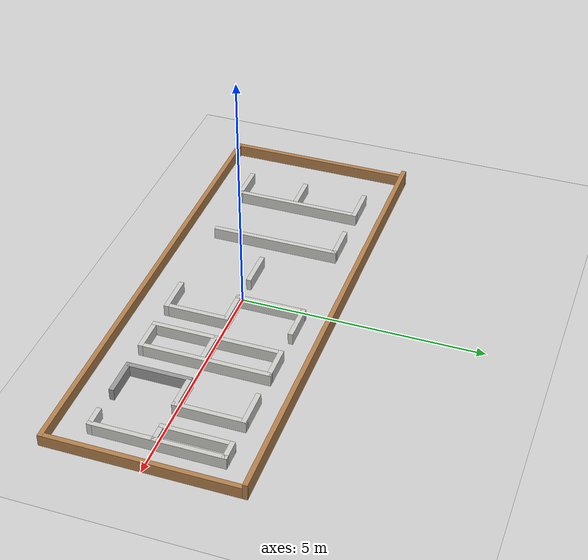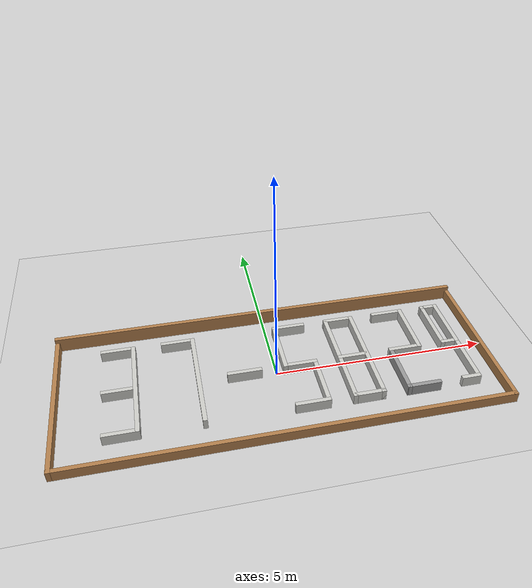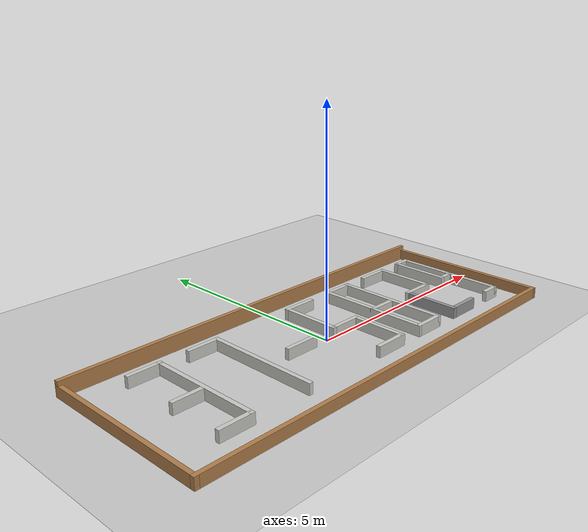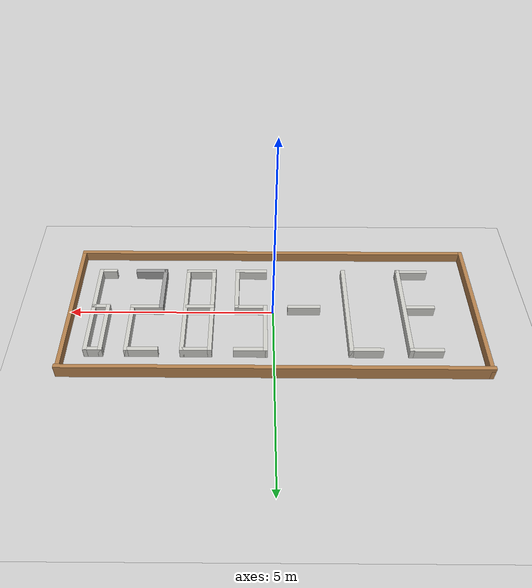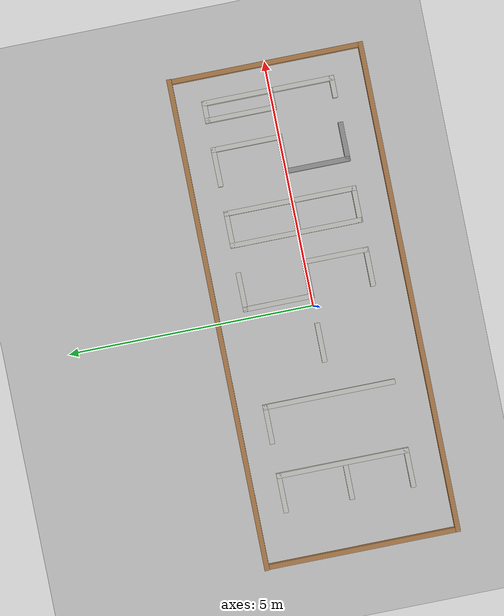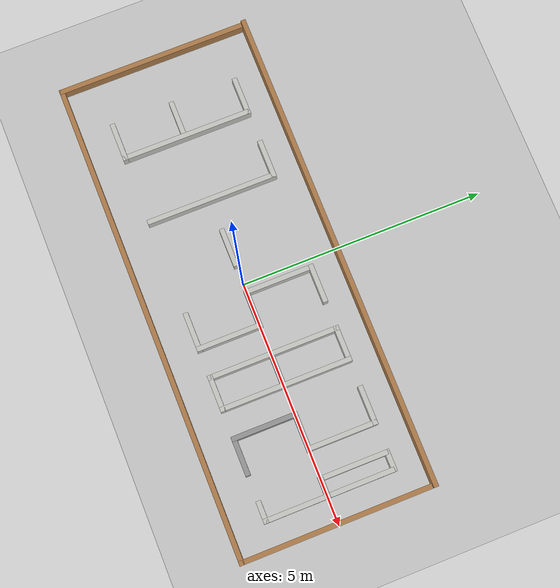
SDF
<sdf version="1.6">
 <world name="default">
  <light name="sun" type="directional">
   <pose>0 0 10 0 -0 0</pose>
   <diffuse>0.8 0.8 0.8 1</diffuse>
   <specular>0.1 0.1 0.1 1</specular>
   <attenuation>
    <range>1000</range>
    <constant>0.9</constant>
    <linear>0.01</linear>
    <quadratic>0.001</quadratic>
   </attenuation>
   <direction>-0.5 0.5 -1</direction>
  </light>
  <model name="ground_plane">
   <static>1</static>
   <link name="link">
    <collision name="collision">
     <geometry><plane><normal>0 0 1</normal><size>100 100</size></plane></geometry>
     <surface><friction><ode><mu>100</mu><mu2>50</mu2></ode></friction></surface>
    </collision>
    <visual name="visual">
     <cast_shadows>0</cast_shadows>
     <geometry><plane><normal>0 0 1</normal><size>100 100</size></plane></geometry>
     <material>
      <script><uri>file://media/materials/scripts/gazebo.material</uri><name>Gazebo/Grey</name></script>
     </material>
    </visual>
   </link>
  </model>
  <gravity>0 0 -9.8</gravity>
  <magnetic_field>6e-06 2.3e-05 -4.2e-05</magnetic_field>
  <atmosphere type="adiabatic"/>
  <physics name="default_physics" default="0" type="ode">
   <max_step_size>0.001</max_step_size>
   <real_time_factor>1</real_time_factor>
   <real_time_update_rate>1000</real_time_update_rate>
  </physics>
  <scene><ambient>0.4 0.4 0.4 1</ambient><background>0.7 0.7 0.7 1</background><shadows>1</shadows></scene>
  <spherical_coordinates>
   <surface_model>EARTH_WGS84</surface_model>
   <latitude_deg>0</latitude_deg>
   <longitude_deg>0</longitude_deg>
   <elevation>0</elevation>
   <heading_deg>0</heading_deg>
  </spherical_coordinates>
  <model name="ms4_map">
   <link name="Wall_0">
    <collision name="Wall_0_Collision">
     <geometry><box><size>10 0.1 0.25</size></box></geometry>
     <pose>0 0 0.125 0 -0 0</pose>
    </collision>
    <visual name="Wall_0_Visual">
     <pose>0 0 0.125 0 -0 0</pose>
     <geometry><box><size>10 0.1 0.25</size></box></geometry>
     <material>
      <script><uri>file://media/materials/scripts/gazebo.material</uri><name>Gazebo/Wood</name></script>
      <ambient>1 1 1 1</ambient>
     </material>
    </visual>
    <pose>0 -1.95 0 0 -0 0</pose>
   </link>
   <link name="Wall_11">
    <collision name="Wall_11_Collision">
     <geometry><box><size>4 0.1 0.25</size></box></geometry>
     <pose>0 0 0.125 0 -0 0</pose>
    </collision>
    <visual name="Wall_11_Visual">
     <pose>0 0 0.125 0 -0 0</pose>
     <geometry><box><size>4 0.1 0.25</size></box></geometry>
     <material>
      <script><uri>file://media/materials/scripts/gazebo.material</uri><name>Gazebo/Wood</name></script>
      <ambient>1 1 1 1</ambient>
     </material>
    </visual>
    <pose>4.95 0 0 0 -0 1.5708</pose>
   </link>
   <link name="Wall_17">
    <collision name="Wall_17_Collision">
     <geometry><box><size>0.8 0.1 0.25</size></box></geometry>
     <pose>0 0 0.125 0 -0 0</pose>
    </collision>
    <visual name="Wall_17_Visual">
     <pose>0 0 0.125 0 -0 0</pose>
     <geometry><box><size>0.8 0.1 0.25</size></box></geometry>
     <material>
      <script><uri>file://media/materials/scripts/gazebo.material</uri><name>Gazebo/CeilingTiled</name></script>
      <ambient>1 1 1 1</ambient>
     </material>
    </visual>
    <pose>-3.55 1.35 0 0 -0 0</pose>
   </link>
   <link name="Wall_21">
    <collision name="Wall_21_Collision">
     <geometry><box><size>2.7 0.1 0.25</size></box></geometry>
     <pose>0 0 0.125 0 -0 0</pose>
    </collision>
    <visual name="Wall_21_Visual">
     <pose>0 0 0.125 0 -0 0</pose>
     <geometry><box><size>2.7 0.1 0.25</size></box></geometry>
     <material>
      <script><uri>file://media/materials/scripts/gazebo.material</uri><name>Gazebo/CeilingTiled</name></script>
      <ambient>1 1 1 1</ambient>
     </material>
    </visual>
    <pose>-3.2 0.05 0 0 0 -1.5708</pose>
   </link>
   <link name="Wall_23">
    <collision name="Wall_23_Collision">
     <geometry><box><size>0.8 0.1 0.25</size></box></geometry>
     <pose>0 0 0.125 0 -0 0</pose>
    </collision>
    <visual name="Wall_23_Visual">
     <pose>0 0 0.125 0 -0 0</pose>
     <geometry><box><size>0.8 0.1 0.25</size></box></geometry>
     <material>
      <script><uri>file://media/materials/scripts/gazebo.material</uri><name>Gazebo/CeilingTiled</name></script>
      <ambient>1 1 1 1</ambient>
     </material>
    </visual>
    <pose>-3.55 -1.25 0 0 -0 3.14159</pose>
   </link>
   <link name="Wall_27">
    <collision name="Wall_27_Collision">
     <geometry><box><size>0.7 0.1 0.25</size></box></geometry>
     <pose>0 0 0.125 0 -0 0</pose>
    </collision>
    <visual name="Wall_27_Visual">
     <pose>0 0 0.125 0 -0 0</pose>
     <geometry><box><size>0.7 0.1 0.25</size></box></geometry>
     <material>
      <script><uri>file://media/materials/scripts/gazebo.material</uri><name>Gazebo/CeilingTiled</name></script>
      <ambient>1 1 1 1</ambient>
     </material>
    </visual>
    <pose>-3.599 0 0 0 -0 3.14159</pose>
   </link>
   <link name="Wall_29">
    <collision name="Wall_29_Collision">
     <geometry><box><size>0.8 0.1 0.25</size></box></geometry>
     <pose>0 0 0.125 0 -0 0</pose>
    </collision>
    <visual name="Wall_29_Visual">
     <pose>0 0 0.125 0 -0 0</pose>
     <geometry><box><size>0.8 0.1 0.25</size></box></geometry>
     <material>
      <script><uri>file://media/materials/scripts/gazebo.material</uri><name>Gazebo/CeilingTiled</name></script>
      <ambient>1 1 1 1</ambient>
     </material>
    </visual>
    <pose>-2.15 1.35 0 0 -0 0</pose>
   </link>
   <link name="Wall_31">
    <collision name="Wall_31_Collision">
     <geometry><box><size>2.7 0.1 0.25</size></box></geometry>
     <pose>0 0 0.125 0 -0 0</pose>
    </collision>
    <visual name="Wall_31_Visual">
     <pose>0 0 0.125 0 -0 0</pose>
     <geometry><box><size>2.7 0.1 0.25</size></box></geometry>
     <material>
      <script><uri>file://media/materials/scripts/gazebo.material</uri><name>Gazebo/CeilingTiled</name></script>
      <ambient>1 1 1 1</ambient>
     </material>
    </visual>
    <pose>-1.8 0.05 0 0 0 -1.5708</pose>
   </link>
   <link name="Wall_34">
    <collision name="Wall_34_Collision">
     <geometry><box><size>0.8 0.1 0.25</size></box></geometry>
     <pose>0 0 0.125 0 -0 0</pose>
    </collision>
    <visual name="Wall_34_Visual">
     <pose>0 0 0.125 0 -0 0</pose>
     <geometry><box><size>0.8 0.1 0.25</size></box></geometry>
     <material>
      <script><uri>file://media/materials/scripts/gazebo.material</uri><name>Gazebo/CeilingTiled</name></script>
      <ambient>1 1 1 1</ambient>
     </material>
    </visual>
    <pose>-0.75 0 0 0 -0 0</pose>
   </link>
   <link name="Wall_36">
    <collision name="Wall_36_Collision">
     <geometry><box><size>0.8 0.1 0.25</size></box></geometry>
     <pose>0 0 0.125 0 -0 0</pose>
    </collision>
    <visual name="Wall_36_Visual">
     <pose>0 0 0.125 0 -0 0</pose>
     <geometry><box><size>0.8 0.1 0.25</size></box></geometry>
     <material>
      <script><uri>file://media/materials/scripts/gazebo.material</uri><name>Gazebo/CeilingTiled</name></script>
      <ambient>1 1 1 1</ambient>
     </material>
    </visual>
    <pose>0.55 1.35 0 0 -0 0</pose>
   </link>
   <link name="Wall_4">
    <collision name="Wall_4_Collision">
     <geometry><box><size>4.00021 0.1 0.25</size></box></geometry>
     <pose>0 0 0.125 0 -0 0</pose>
    </collision>
    <visual name="Wall_4_Visual">
     <pose>0 0 0.125 0 -0 0</pose>
     <geometry><box><size>4.00021 0.1 0.25</size></box></geometry>
     <material>
      <script><uri>file://media/materials/scripts/gazebo.material</uri><name>Gazebo/Wood</name></script>
      <ambient>1 1 1 1</ambient>
     </material>
    </visual>
    <pose>-4.95 0 0 0 -0 1.5708</pose>
   </link>
   <link name="Wall_40">
    <collision name="Wall_40_Collision">
     <geometry><box><size>1.45 0.1 0.25</size></box></geometry>
     <pose>0 0 0.125 0 -0 0</pose>
    </collision>
    <visual name="Wall_40_Visual">
     <pose>0 0 0.125 0 -0 0</pose>
     <geometry><box><size>1.45 0.1 0.25</size></box></geometry>
     <material>
      <script><uri>file://media/materials/scripts/gazebo.material</uri><name>Gazebo/CeilingTiled</name></script>
      <ambient>1 1 1 1</ambient>
     </material>
    </visual>
    <pose>0.2 0.675 0 0 0 -1.5708</pose>
   </link>
   <link name="Wall_42">
    <collision name="Wall_42_Collision">
     <geometry><box><size>0.8 0.1 0.25</size></box></geometry>
     <pose>0 0 0.125 0 -0 0</pose>
    </collision>
    <visual name="Wall_42_Visual">
     <pose>0 0 0.125 0 -0 0</pose>
     <geometry><box><size>0.8 0.1 0.25</size></box></geometry>
     <material>
      <script><uri>file://media/materials/scripts/gazebo.material</uri><name>Gazebo/CeilingTiled</name></script>
      <ambient>1 1 1 1</ambient>
     </material>
    </visual>
    <pose>0.55 0 0 0 -0 0</pose>
   </link>
   <link name="Wall_44">
    <collision name="Wall_44_Collision">
     <geometry><box><size>1.35 0.1 0.25</size></box></geometry>
     <pose>0 0 0.125 0 -0 0</pose>
    </collision>
    <visual name="Wall_44_Visual">
     <pose>0 0 0.125 0 -0 0</pose>
     <geometry><box><size>1.35 0.1 0.25</size></box></geometry>
     <material>
      <script><uri>file://media/materials/scripts/gazebo.material</uri><name>Gazebo/CeilingTiled</name></script>
      <ambient>1 1 1 1</ambient>
     </material>
    </visual>
    <pose>0.9 -0.625 0 0 0 -1.5708</pose>
   </link>
   <link name="Wall_46">
    <collision name="Wall_46_Collision">
     <geometry><box><size>0.8 0.1 0.25</size></box></geometry>
     <pose>0 0 0.125 0 -0 0</pose>
    </collision>
    <visual name="Wall_46_Visual">
     <pose>0 0 0.125 0 -0 0</pose>
     <geometry><box><size>0.8 0.1 0.25</size></box></geometry>
     <material>
      <script><uri>file://media/materials/scripts/gazebo.material</uri><name>Gazebo/CeilingTiled</name></script>
      <ambient>1 1 1 1</ambient>
     </material>
    </visual>
    <pose>0.55 -1.25 0 0 -0 3.14159</pose>
   </link>
   <link name="Wall_48">
    <collision name="Wall_48_Collision">
     <geometry><box><size>0.75 0.1 0.25</size></box></geometry>
     <pose>0 0 0.125 0 -0 0</pose>
    </collision>
    <visual name="Wall_48_Visual">
     <pose>0 0 0.125 0 -0 0</pose>
     <geometry><box><size>0.75 0.1 0.25</size></box></geometry>
     <material>
      <script><uri>file://media/materials/scripts/gazebo.material</uri><name>Gazebo/CeilingTiled</name></script>
      <ambient>1 1 1 1</ambient>
     </material>
    </visual>
    <pose>1.825 1.35 0 0 -0 0</pose>
   </link>
   <link name="Wall_50">
    <collision name="Wall_50_Collision">
     <geometry><box><size>2.7 0.1 0.25</size></box></geometry>
     <pose>0 0 0.125 0 -0 0</pose>
    </collision>
    <visual name="Wall_50_Visual">
     <pose>0 0 0.125 0 -0 0</pose>
     <geometry><box><size>2.7 0.1 0.25</size></box></geometry>
     <material>
      <script><uri>file://media/materials/scripts/gazebo.material</uri><name>Gazebo/CeilingTiled</name></script>
      <ambient>1 1 1 1</ambient>
     </material>
    </visual>
    <pose>1.5 0.05 0 0 0 -1.5708</pose>
   </link>
   <link name="Wall_52">
    <collision name="Wall_52_Collision">
     <geometry><box><size>2.7 0.1 0.25</size></box></geometry>
     <pose>0 0 0.125 0 -0 0</pose>
    </collision>
    <visual name="Wall_52_Visual">
     <pose>0 0 0.125 0 -0 0</pose>
     <geometry><box><size>2.7 0.1 0.25</size></box></geometry>
     <material>
      <script><uri>file://media/materials/scripts/gazebo.material</uri><name>Gazebo/CeilingTiled</name></script>
      <ambient>1 1 1 1</ambient>
     </material>
    </visual>
    <pose>2.15 0.05 0 0 0 -1.5708</pose>
   </link>
   <link name="Wall_54">
    <collision name="Wall_54_Collision">
     <geometry><box><size>0.75 0.1 0.25</size></box></geometry>
     <pose>0 0 0.125 0 -0 0</pose>
    </collision>
    <visual name="Wall_54_Visual">
     <pose>0 0 0.125 0 -0 0</pose>
     <geometry><box><size>0.75 0.1 0.25</size></box></geometry>
     <material>
      <script><uri>file://media/materials/scripts/gazebo.material</uri><name>Gazebo/CeilingTiled</name></script>
      <ambient>1 1 1 1</ambient>
     </material>
    </visual>
    <pose>1.825 -1.25 0 0 -0 0</pose>
   </link>
   <link name="Wall_56">
    <collision name="Wall_56_Collision">
     <geometry><box><size>0.7 0.1 0.25</size></box></geometry>
     <pose>0 0 0.125 0 -0 0</pose>
    </collision>
    <visual name="Wall_56_Visual">
     <pose>0 0 0.125 0 -0 0</pose>
     <geometry><box><size>0.7 0.1 0.25</size></box></geometry>
     <material>
      <script><uri>file://media/materials/scripts/gazebo.material</uri><name>Gazebo/CeilingTiled</name></script>
      <ambient>1 1 1 1</ambient>
     </material>
    </visual>
    <pose>1.8 0 0 0 -0 0</pose>
   </link>
   <link name="Wall_58">
    <collision name="Wall_58_Collision">
     <geometry><box><size>0.8 0.1 0.25</size></box></geometry>
     <pose>0 0 0.125 0 -0 0</pose>
    </collision>
    <visual name="Wall_58_Visual">
     <pose>0 0 0.125 0 -0 0</pose>
     <geometry><box><size>0.8 0.1 0.25</size></box></geometry>
     <material>
      <script><uri>file://media/materials/scripts/gazebo.material</uri><name>Gazebo/CeilingTiled</name></script>
      <ambient>1 1 1 1</ambient>
     </material>
    </visual>
    <pose>3.1 1.35 0 0 -0 0</pose>
   </link>
   <link name="Wall_60">
    <collision name="Wall_60_Collision">
     <geometry><box><size>1.45 0.1 0.25</size></box></geometry>
     <pose>0 0 0.125 0 -0 0</pose>
    </collision>
    <visual name="Wall_60_Visual">
     <pose>0 0 0.125 0 -0 0</pose>
     <geometry><box><size>1.45 0.1 0.25</size></box></geometry>
     <material>
      <script><uri>file://media/materials/scripts/gazebo.material</uri><name>Gazebo/CeilingTiled</name></script>
      <ambient>1 1 1 1</ambient>
     </material>
    </visual>
    <pose>3.45 0.675 0 0 0 -1.5708</pose>
   </link>
   <link name="Wall_62">
    <collision name="Wall_62_Collision">
     <geometry><box><size>0.8 0.1 0.25</size></box></geometry>
     <pose>0 0 0.125 0 -0 0</pose>
    </collision>
    <visual name="Wall_62_Visual">
     <pose>0 0 0.125 0 -0 0</pose>
     <geometry><box><size>0.8 0.1 0.25</size></box></geometry>
     <material>
      <script><uri>file://media/materials/scripts/gazebo.material</uri><name>Gazebo/CeilingTiled</name></script>
      <ambient>1 1 1 1</ambient>
     </material>
    </visual>
    <pose>3.1 0 0 0 -0 3.14159</pose>
   </link>
   <link name="Wall_64">
    <collision name="Wall_64_Collision">
     <geometry><box><size>1.35 0.1 0.25</size></box></geometry>
     <pose>0 0 0.125 0 -0 0</pose>
    </collision>
    <visual name="Wall_64_Visual">
     <pose>0 0 0.125 0 -0 0</pose>
     <geometry><box><size>1.35 0.1 0.25</size></box></geometry>
     <material>
      <script><uri>file://media/materials/scripts/gazebo.material</uri><name>Gazebo/Grey</name></script>
      <ambient>1 1 1 1</ambient>
     </material>
    </visual>
    <pose>2.75 -0.625 0 0 0 -1.5708</pose>
   </link>
   <link name="Wall_66">
    <collision name="Wall_66_Collision">
     <geometry><box><size>0.8 0.1 0.25</size></box></geometry>
     <pose>0 0 0.125 0 -0 0</pose>
    </collision>
    <visual name="Wall_66_Visual">
     <pose>0 0 0.125 0 -0 0</pose>
     <geometry><box><size>0.8 0.1 0.25</size></box></geometry>
     <material>
      <script><uri>file://media/materials/scripts/gazebo.material</uri><name>Gazebo/Grey</name></script>
      <ambient>1 1 1 1</ambient>
     </material>
    </visual>
    <pose>3.1 -1.25 0 0 -0 0</pose>
   </link>
   <link name="Wall_68">
    <collision name="Wall_68_Collision">
     <geometry><box><size>0.45 0.1 0.25</size></box></geometry>
     <pose>0 0 0.125 0 -0 0</pose>
    </collision>
    <visual name="Wall_68_Visual">
     <pose>0 0 0.125 0 -0 0</pose>
     <geometry><box><size>0.45 0.1 0.25</size></box></geometry>
     <material>
      <script><uri>file://media/materials/scripts/gazebo.material</uri><name>Gazebo/CeilingTiled</name></script>
      <ambient>1 1 1 1</ambient>
     </material>
    </visual>
    <pose>4.225 1.35 0 0 -0 0</pose>
   </link>
   <link name="Wall_70">
    <collision name="Wall_70_Collision">
     <geometry><box><size>1.45 0.1 0.25</size></box></geometry>
     <pose>0 0 0.125 0 -0 0</pose>
    </collision>
    <visual name="Wall_70_Visual">
     <pose>0 0 0.125 0 -0 0</pose>
     <geometry><box><size>1.45 0.1 0.25</size></box></geometry>
     <material>
      <script><uri>file://media/materials/scripts/gazebo.material</uri><name>Gazebo/CeilingTiled</name></script>
      <ambient>1 1 1 1</ambient>
     </material>
    </visual>
    <pose>4.05 0.675 0 0 0 -1.5708</pose>
   </link>
   <link name="Wall_72">
    <collision name="Wall_72_Collision">
     <geometry><box><size>1.45 0.1 0.25</size></box></geometry>
     <pose>0 0 0.125 0 -0 0</pose>
    </collision>
    <visual name="Wall_72_Visual">
     <pose>0 0 0.125 0 -0 0</pose>
     <geometry><box><size>1.45 0.1 0.25</size></box></geometry>
     <material>
      <script><uri>file://media/materials/scripts/gazebo.material</uri><name>Gazebo/CeilingTiled</name></script>
      <ambient>1 1 1 1</ambient>
     </material>
    </visual>
    <pose>4.4 0.675 0 0 0 -1.5708</pose>
   </link>
   <link name="Wall_74">
    <collision name="Wall_74_Collision">
     <geometry><box><size>0.45 0.1 0.25</size></box></geometry>
     <pose>0 0 0.125 0 -0 0</pose>
    </collision>
    <visual name="Wall_74_Visual">
     <pose>0 0 0.125 0 -0 0</pose>
     <geometry><box><size>0.45 0.1 0.25</size></box></geometry>
     <material>
      <script><uri>file://media/materials/scripts/gazebo.material</uri><name>Gazebo/CeilingTiled</name></script>
      <ambient>1 1 1 1</ambient>
     </material>
    </visual>
    <pose>4.225 0 0 0 -0 0</pose>
   </link>
   <link name="Wall_76">
    <collision name="Wall_76_Collision">
     <geometry><box><size>1.35 0.1 0.25</size></box></geometry>
     <pose>0 0 0.125 0 -0 0</pose>
    </collision>
    <visual name="Wall_76_Visual">
     <pose>0 0 0.125 0 -0 0</pose>
     <geometry><box><size>1.35 0.1 0.25</size></box></geometry>
     <material>
      <script><uri>file://media/materials/scripts/gazebo.material</uri><name>Gazebo/CeilingTiled</name></script>
      <ambient>1 1 1 1</ambient>
     </material>
    </visual>
    <pose>4.4 -0.625 0 0 0 -1.5708</pose>
   </link>
   <link name="Wall_78">
    <collision name="Wall_78_Collision">
     <geometry><box><size>0.45 0.1 0.25</size></box></geometry>
     <pose>0 0 0.125 0 -0 0</pose>
    </collision>
    <visual name="Wall_78_Visual">
     <pose>0 0 0.125 0 -0 0</pose>
     <geometry><box><size>0.45 0.1 0.25</size></box></geometry>
     <material>
      <script><uri>file://media/materials/scripts/gazebo.material</uri><name>Gazebo/CeilingTiled</name></script>
      <ambient>1 1 1 1</ambient>
     </material>
    </visual>
    <pose>4.225 -1.25 0 0 -0 3.14159</pose>
   </link>
   <link name="Wall_8">
    <collision name="Wall_8_Collision">
     <geometry><box><size>10 0.1 0.35</size></box></geometry>
     <pose>0 0 0.175 0 -0 0</pose>
    </collision>
    <visual name="Wall_8_Visual">
     <pose>0 0 0.175 0 -0 0</pose>
     <geometry><box><size>10 0.1 0.35</size></box></geometry>
     <material>
      <script><uri>file://media/materials/scripts/gazebo.material</uri><name>Gazebo/Wood</name></script>
      <ambient>1 1 1 1</ambient>
     </material>
    </visual>
    <pose>0 1.95 0 0 -0 0</pose>
   </link>
   <static>1</static>
  </model>
 </world>
</sdf>
